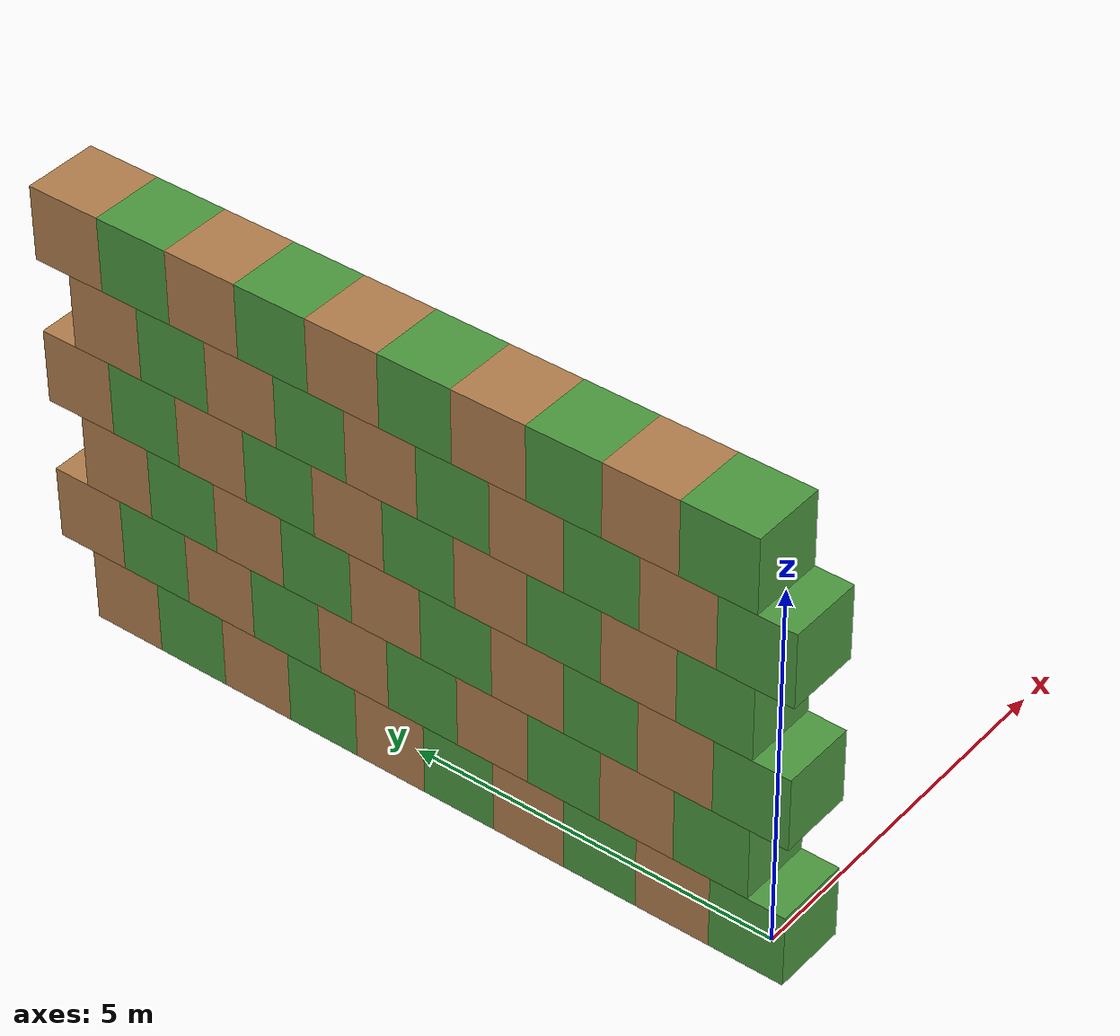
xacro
<?xml version="1.0"?>
<robot name="continuous_pendulum"
       xmlns:xi="http://www.w3.org/2001/XInclude"
       xmlns:gazebo="http://playerstage.sourceforge.net/gazebo/xmlschema/#gz"
       xmlns:model="http://playerstage.sourceforge.net/gazebo/xmlschema/#model"
       xmlns:sensor="http://playerstage.sourceforge.net/gazebo/xmlschema/#sensor"
       xmlns:body="http://playerstage.sourceforge.net/gazebo/xmlschema/#body"
       xmlns:geom="http://playerstage.sourceforge.net/gazebo/xmlschema/#geom"
       xmlns:joint="http://playerstage.sourceforge.net/gazebo/xmlschema/#joint"
       xmlns:interface="http://playerstage.sourceforge.net/gazebo/xmlschema/#interface"
       xmlns:rendering="http://playerstage.sourceforge.net/gazebo/xmlschema/#rendering"
       xmlns:renderable="http://playerstage.sourceforge.net/gazebo/xmlschema/#renderable"
       xmlns:controller="http://playerstage.sourceforge.net/gazebo/xmlschema/#controller"
       xmlns:xacro="http://ros.org/wiki/xacro"
       xmlns:physics="http://playerstage.sourceforge.net/gazebo/xmlschema/#physics">

  <xacro:property name="moi" value="0.01"/>
  <xacro:property name="mass" value="1.0"/>
  <xacro:property name="kp" value="100000000000.0"/> <!-- erp of ~1e-2 -->
  <xacro:property name="kd" value="1000000000.0"/> <!-- cfm of ~1e-10 -->

  <link name="world"/>
  <xacro:macro name="one_link" params="link_name parent *origin material">
    <joint name="${link_name}_joint" type="floating" >
      <insert_block name="origin"/>
      <parent link="${parent}" />
      <child link="${link_name}" />
      <dynamics damping="0.0" />
    </joint>
    <link name="${link_name}">
      <inertial >
        <mass value="${mass}" />
        <origin xyz="0 0 0" />
        <inertia  ixx="${moi}" ixy="0.0"  ixz="0.0"  iyy="${moi}"  iyz="0.0"  izz="${moi}" />
      </inertial>
      <visual >
        <origin xyz="0 0 0.5" rpy="0 0 0" />
        <geometry>
          <box size="1 1 1" />
        </geometry>
      </visual>
      <collision >
        <origin xyz="0 0 0.5" rpy="0 0 0" />
        <geometry>
          <box size="1 1 1" />
        </geometry>
      </collision>
    </link>
    <gazebo reference="${link_name}">
      <kp>${kp}</kp>
      <kd>${kd}</kd>
      <material>${material}</material>
      <turnGravityOff>false</turnGravityOff>
      <selfCollide>true</selfCollide>
    </gazebo>
  </xacro:macro>

  <xacro:one_link link_name="link00" parent="world" material="Gazebo/GrassFloor"> <origin xyz="0 0 0" rpy="0 0 0"/> </xacro:one_link>
  <xacro:one_link link_name="link01" parent="world" material="Gazebo/LightWood">  <origin xyz="0 1 0" rpy="0 0 0"/> </xacro:one_link>
  <xacro:one_link link_name="link02" parent="world" material="Gazebo/GrassFloor"> <origin xyz="0 2 0" rpy="0 0 0"/> </xacro:one_link>
  <xacro:one_link link_name="link03" parent="world" material="Gazebo/LightWood">  <origin xyz="0 3 0" rpy="0 0 0"/> </xacro:one_link>
  <xacro:one_link link_name="link04" parent="world" material="Gazebo/GrassFloor"> <origin xyz="0 4 0" rpy="0 0 0"/> </xacro:one_link>
  <xacro:one_link link_name="link05" parent="world" material="Gazebo/LightWood">  <origin xyz="0 5 0" rpy="0 0 0"/> </xacro:one_link>
  <xacro:one_link link_name="link06" parent="world" material="Gazebo/GrassFloor"> <origin xyz="0 6 0" rpy="0 0 0"/> </xacro:one_link>
  <xacro:one_link link_name="link07" parent="world" material="Gazebo/LightWood">  <origin xyz="0 7 0" rpy="0 0 0"/> </xacro:one_link>
  <xacro:one_link link_name="link08" parent="world" material="Gazebo/GrassFloor"> <origin xyz="0 8 0" rpy="0 0 0"/> </xacro:one_link>
  <xacro:one_link link_name="link09" parent="world" material="Gazebo/LightWood">  <origin xyz="0 9 0" rpy="0 0 0"/> </xacro:one_link>

  <xacro:one_link link_name="link10" parent="world" material="Gazebo/GrassFloor"> <origin xyz="0 0.5 1" rpy="0 0 0"/> </xacro:one_link>
  <xacro:one_link link_name="link11" parent="world" material="Gazebo/LightWood">  <origin xyz="0 1.5 1" rpy="0 0 0"/> </xacro:one_link>
  <xacro:one_link link_name="link12" parent="world" material="Gazebo/GrassFloor"> <origin xyz="0 2.5 1" rpy="0 0 0"/> </xacro:one_link>
  <xacro:one_link link_name="link13" parent="world" material="Gazebo/LightWood">  <origin xyz="0 3.5 1" rpy="0 0 0"/> </xacro:one_link>
  <xacro:one_link link_name="link14" parent="world" material="Gazebo/GrassFloor"> <origin xyz="0 4.5 1" rpy="0 0 0"/> </xacro:one_link>
  <xacro:one_link link_name="link15" parent="world" material="Gazebo/LightWood">  <origin xyz="0 5.5 1" rpy="0 0 0"/> </xacro:one_link>
  <xacro:one_link link_name="link16" parent="world" material="Gazebo/GrassFloor"> <origin xyz="0 6.5 1" rpy="0 0 0"/> </xacro:one_link>
  <xacro:one_link link_name="link17" parent="world" material="Gazebo/LightWood">  <origin xyz="0 7.5 1" rpy="0 0 0"/> </xacro:one_link>
  <xacro:one_link link_name="link18" parent="world" material="Gazebo/GrassFloor"> <origin xyz="0 8.5 1" rpy="0 0 0"/> </xacro:one_link>
  <xacro:one_link link_name="link19" parent="world" material="Gazebo/LightWood">  <origin xyz="0 9.5 1" rpy="0 0 0"/> </xacro:one_link>

  <xacro:one_link link_name="link20" parent="world" material="Gazebo/GrassFloor"> <origin xyz="0 0 2" rpy="0 0 0"/> </xacro:one_link>
  <xacro:one_link link_name="link21" parent="world" material="Gazebo/LightWood">  <origin xyz="0 1 2" rpy="0 0 0"/> </xacro:one_link>
  <xacro:one_link link_name="link22" parent="world" material="Gazebo/GrassFloor"> <origin xyz="0 2 2" rpy="0 0 0"/> </xacro:one_link>
  <xacro:one_link link_name="link23" parent="world" material="Gazebo/LightWood">  <origin xyz="0 3 2" rpy="0 0 0"/> </xacro:one_link>
  <xacro:one_link link_name="link24" parent="world" material="Gazebo/GrassFloor"> <origin xyz="0 4 2" rpy="0 0 0"/> </xacro:one_link>
  <xacro:one_link link_name="link25" parent="world" material="Gazebo/LightWood">  <origin xyz="0 5 2" rpy="0 0 0"/> </xacro:one_link>
  <xacro:one_link link_name="link26" parent="world" material="Gazebo/GrassFloor"> <origin xyz="0 6 2" rpy="0 0 0"/> </xacro:one_link>
  <xacro:one_link link_name="link27" parent="world" material="Gazebo/LightWood">  <origin xyz="0 7 2" rpy="0 0 0"/> </xacro:one_link>
  <xacro:one_link link_name="link28" parent="world" material="Gazebo/GrassFloor"> <origin xyz="0 8 2" rpy="0 0 0"/> </xacro:one_link>
  <xacro:one_link link_name="link29" parent="world" material="Gazebo/LightWood">  <origin xyz="0 9 2" rpy="0 0 0"/> </xacro:one_link>

  <xacro:one_link link_name="link30" parent="world" material="Gazebo/GrassFloor"> <origin xyz="0 0.5 3" rpy="0 0 0"/> </xacro:one_link>
  <xacro:one_link link_name="link31" parent="world" material="Gazebo/LightWood">  <origin xyz="0 1.5 3" rpy="0 0 0"/> </xacro:one_link>
  <xacro:one_link link_name="link32" parent="world" material="Gazebo/GrassFloor"> <origin xyz="0 2.5 3" rpy="0 0 0"/> </xacro:one_link>
  <xacro:one_link link_name="link33" parent="world" material="Gazebo/LightWood">  <origin xyz="0 3.5 3" rpy="0 0 0"/> </xacro:one_link>
  <xacro:one_link link_name="link34" parent="world" material="Gazebo/GrassFloor"> <origin xyz="0 4.5 3" rpy="0 0 0"/> </xacro:one_link>
  <xacro:one_link link_name="link35" parent="world" material="Gazebo/LightWood">  <origin xyz="0 5.5 3" rpy="0 0 0"/> </xacro:one_link>
  <xacro:one_link link_name="link36" parent="world" material="Gazebo/GrassFloor"> <origin xyz="0 6.5 3" rpy="0 0 0"/> </xacro:one_link>
  <xacro:one_link link_name="link37" parent="world" material="Gazebo/LightWood">  <origin xyz="0 7.5 3" rpy="0 0 0"/> </xacro:one_link>
  <xacro:one_link link_name="link38" parent="world" material="Gazebo/GrassFloor"> <origin xyz="0 8.5 3" rpy="0 0 0"/> </xacro:one_link>
  <xacro:one_link link_name="link39" parent="world" material="Gazebo/LightWood">  <origin xyz="0 9.5 3" rpy="0 0 0"/> </xacro:one_link>

  <xacro:one_link link_name="link40" parent="world" material="Gazebo/GrassFloor"> <origin xyz="0 0 4" rpy="0 0 0"/> </xacro:one_link>
  <xacro:one_link link_name="link41" parent="world" material="Gazebo/LightWood">  <origin xyz="0 1 4" rpy="0 0 0"/> </xacro:one_link>
  <xacro:one_link link_name="link42" parent="world" material="Gazebo/GrassFloor"> <origin xyz="0 2 4" rpy="0 0 0"/> </xacro:one_link>
  <xacro:one_link link_name="link43" parent="world" material="Gazebo/LightWood">  <origin xyz="0 3 4" rpy="0 0 0"/> </xacro:one_link>
  <xacro:one_link link_name="link44" parent="world" material="Gazebo/GrassFloor"> <origin xyz="0 4 4" rpy="0 0 0"/> </xacro:one_link>
  <xacro:one_link link_name="link45" parent="world" material="Gazebo/LightWood">  <origin xyz="0 5 4" rpy="0 0 0"/> </xacro:one_link>
  <xacro:one_link link_name="link46" parent="world" material="Gazebo/GrassFloor"> <origin xyz="0 6 4" rpy="0 0 0"/> </xacro:one_link>
  <xacro:one_link link_name="link47" parent="world" material="Gazebo/LightWood">  <origin xyz="0 7 4" rpy="0 0 0"/> </xacro:one_link>
  <xacro:one_link link_name="link48" parent="world" material="Gazebo/GrassFloor"> <origin xyz="0 8 4" rpy="0 0 0"/> </xacro:one_link>
  <xacro:one_link link_name="link49" parent="world" material="Gazebo/LightWood">  <origin xyz="0 9 4" rpy="0 0 0"/> </xacro:one_link>

  <xacro:one_link link_name="link50" parent="world" material="Gazebo/GrassFloor"> <origin xyz="0 0.5 5" rpy="0 0 0"/> </xacro:one_link>
  <xacro:one_link link_name="link51" parent="world" material="Gazebo/LightWood">  <origin xyz="0 1.5 5" rpy="0 0 0"/> </xacro:one_link>
  <xacro:one_link link_name="link52" parent="world" material="Gazebo/GrassFloor"> <origin xyz="0 2.5 5" rpy="0 0 0"/> </xacro:one_link>
  <xacro:one_link link_name="link53" parent="world" material="Gazebo/LightWood">  <origin xyz="0 3.5 5" rpy="0 0 0"/> </xacro:one_link>
  <xacro:one_link link_name="link54" parent="world" material="Gazebo/GrassFloor"> <origin xyz="0 4.5 5" rpy="0 0 0"/> </xacro:one_link>
  <xacro:one_link link_name="link55" parent="world" material="Gazebo/LightWood">  <origin xyz="0 5.5 5" rpy="0 0 0"/> </xacro:one_link>
  <xacro:one_link link_name="link56" parent="world" material="Gazebo/GrassFloor"> <origin xyz="0 6.5 5" rpy="0 0 0"/> </xacro:one_link>
  <xacro:one_link link_name="link57" parent="world" material="Gazebo/LightWood">  <origin xyz="0 7.5 5" rpy="0 0 0"/> </xacro:one_link>
  <xacro:one_link link_name="link58" parent="world" material="Gazebo/GrassFloor"> <origin xyz="0 8.5 5" rpy="0 0 0"/> </xacro:one_link>
  <xacro:one_link link_name="link59" parent="world" material="Gazebo/LightWood">  <origin xyz="0 9.5 5" rpy="0 0 0"/> </xacro:one_link>

</robot>
